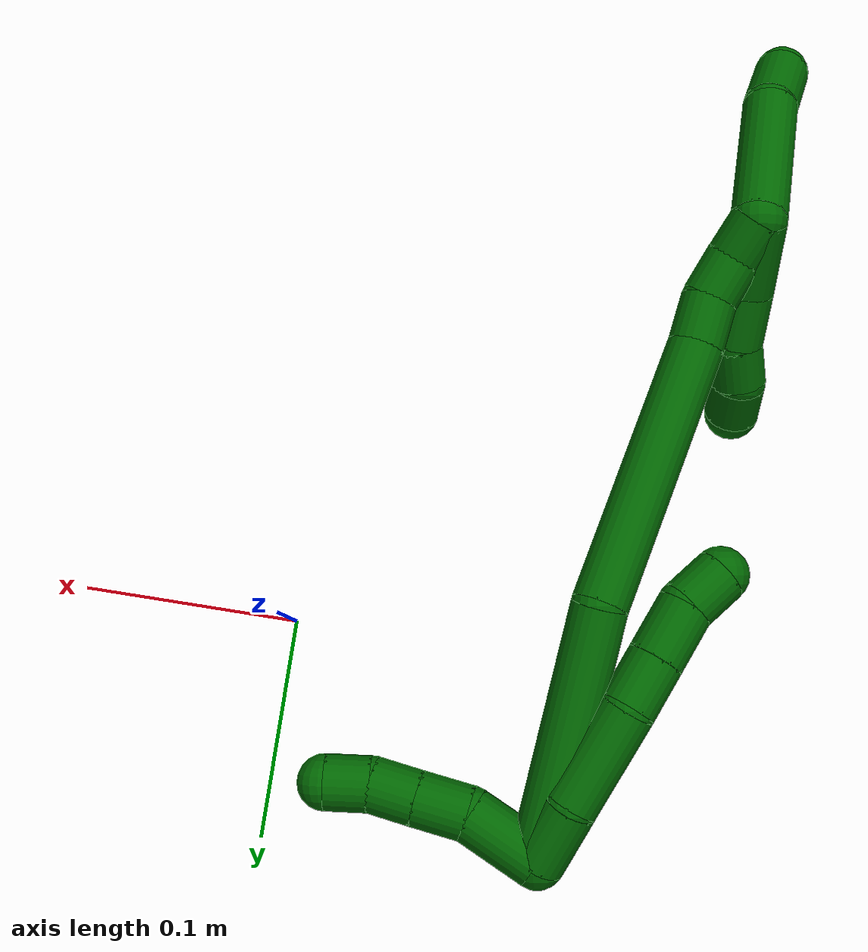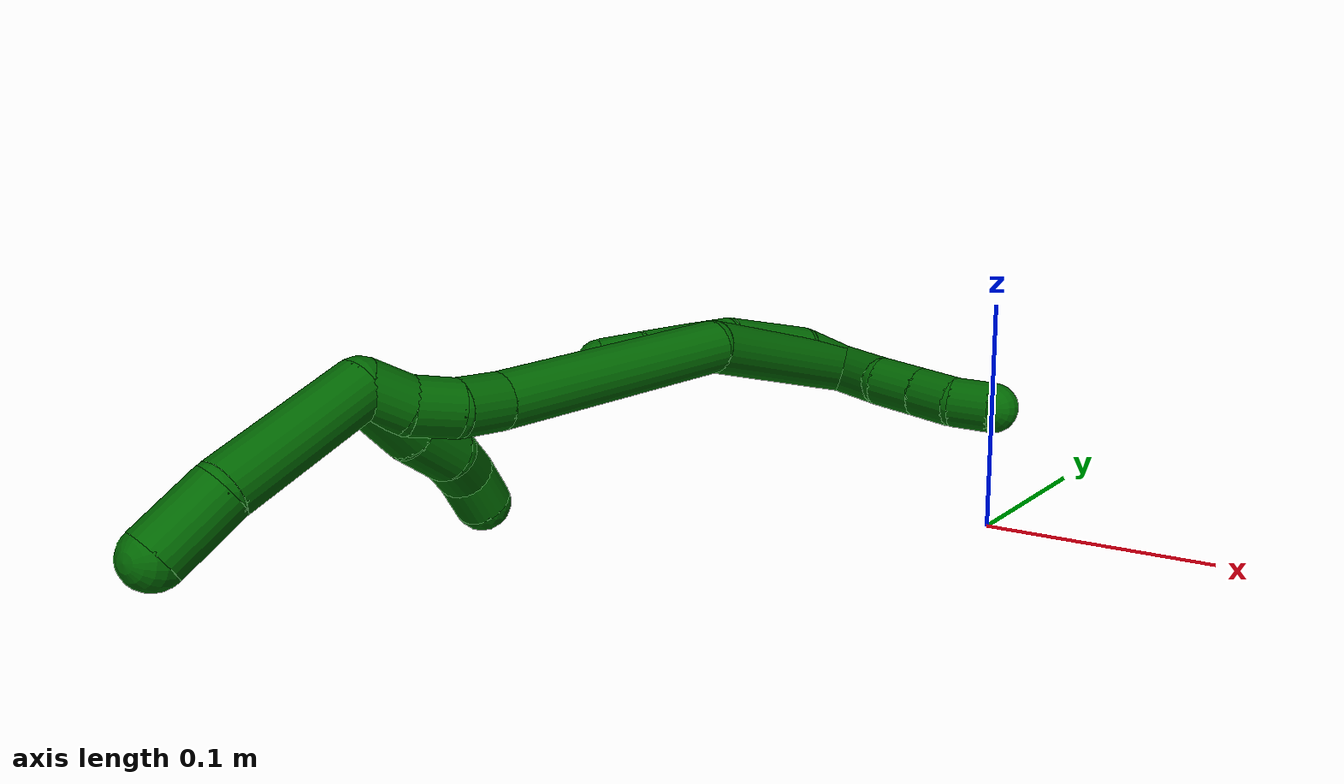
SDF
<sdf version="1.7">
 <world name="default">
  <model name="6">
   <static>0</static>
   <link name="6">
    <collision name="collision-cylinder-e_1_2_8">
     <pose>-0.008015 -0.00168 0.012885 0.129686 -0.552673 -0.036825</pose>
     <geometry><cylinder><radius>0.0125</radius><length>0.030534</length></cylinder></geometry>
     <surface>
      <friction><ode><mu>1.16</mu><mu2>1.16</mu2><slip1>0</slip1><slip2>0</slip2></ode></friction>
      <contact><ode><kp>1e+06</kp><kd>1</kd><max_vel>0</max_vel><min_depth>0.001</min_depth></ode></contact>
     </surface>
    </collision>
    <visual name="visual-cylinder-e_1_2_8">
     <pose>-0.008015 -0.00168 0.012885 0.129686 -0.552673 -0.036825</pose>
     <geometry><cylinder><radius>0.0125</radius><length>0.030534</length></cylinder></geometry>
     <material><ambient>0 0.392157 0.003922 1</ambient></material>
    </visual>
    <collision name="collision-cylinder-e_2_8_9">
     <pose>-0.025786 -0.010545 0.046368 0.335607 -0.420565 -0.07228</pose>
     <geometry><cylinder><radius>0.0125</radius><length>0.047795</length></cylinder></geometry>
     <surface>
      <friction><ode><mu>1.16</mu><mu2>1.16</mu2><slip1>0</slip1><slip2>0</slip2></ode></friction>
      <contact><ode><kp>1e+06</kp><kd>1</kd><max_vel>0</max_vel><min_depth>0.001</min_depth></ode></contact>
     </surface>
    </collision>
    <visual name="visual-cylinder-e_2_8_9">
     <pose>-0.025786 -0.010545 0.046368 0.335607 -0.420565 -0.07228</pose>
     <geometry><cylinder><radius>0.0125</radius><length>0.047795</length></cylinder></geometry>
     <material><ambient>0 0.392157 0.003922 1</ambient></material>
    </visual>
    <collision name="collision-cylinder-e_3_9_10">
     <pose>-0.038483 -0.023302 0.077093 0.503028 -0.249107 -0.06432</pose>
     <geometry><cylinder><radius>0.0125</radius><length>0.023855</length></cylinder></geometry>
     <surface>
      <friction><ode><mu>1.16</mu><mu2>1.16</mu2><slip1>0</slip1><slip2>0</slip2></ode></friction>
      <contact><ode><kp>1e+06</kp><kd>1</kd><max_vel>0</max_vel><min_depth>0.001</min_depth></ode></contact>
     </surface>
    </collision>
    <visual name="visual-cylinder-e_3_9_10">
     <pose>-0.038483 -0.023302 0.077093 0.503028 -0.249107 -0.06432</pose>
     <geometry><cylinder><radius>0.0125</radius><length>0.023855</length></cylinder></geometry>
     <material><ambient>0 0.392157 0.003922 1</ambient></material>
    </visual>
    <collision name="collision-cylinder-e_4_10_11">
     <pose>-0.044534 -0.03516 0.098418 0.511415 -0.237672 -0.062409</pose>
     <geometry><cylinder><radius>0.0125</radius><length>0.026426</length></cylinder></geometry>
     <surface>
      <friction><ode><mu>1.16</mu><mu2>1.16</mu2><slip1>0</slip1><slip2>0</slip2></ode></friction>
      <contact><ode><kp>1e+06</kp><kd>1</kd><max_vel>0</max_vel><min_depth>0.001</min_depth></ode></contact>
     </surface>
    </collision>
    <visual name="visual-cylinder-e_4_10_11">
     <pose>-0.044534 -0.03516 0.098418 0.511415 -0.237672 -0.062409</pose>
     <geometry><cylinder><radius>0.0125</radius><length>0.026426</length></cylinder></geometry>
     <material><ambient>0 0.392157 0.003922 1</ambient></material>
    </visual>
    <collision name="collision-cylinder-e_5_11_6">
     <pose>-0.051428 -0.04872 0.116484 0.814259 -0.361447 -0.157259</pose>
     <geometry><cylinder><radius>0.0125</radius><length>0.021391</length></cylinder></geometry>
     <surface>
      <friction><ode><mu>1.16</mu><mu2>1.16</mu2><slip1>0</slip1><slip2>0</slip2></ode></friction>
      <contact><ode><kp>1e+06</kp><kd>1</kd><max_vel>0</max_vel><min_depth>0.001</min_depth></ode></contact>
     </surface>
    </collision>
    <visual name="visual-cylinder-e_5_11_6">
     <pose>-0.051428 -0.04872 0.116484 0.814259 -0.361447 -0.157259</pose>
     <geometry><cylinder><radius>0.0125</radius><length>0.021391</length></cylinder></geometry>
     <material><ambient>0 0.392157 0.003922 1</ambient></material>
    </visual>
    <collision name="collision-cylinder-e_1_2_12">
     <pose>0.011122 0.009554 0.009494 -0.788543 0.690229 -0.296945</pose>
     <geometry><cylinder><radius>0.0125</radius><length>0.034935</length></cylinder></geometry>
     <surface>
      <friction><ode><mu>1.16</mu><mu2>1.16</mu2><slip1>0</slip1><slip2>0</slip2></ode></friction>
      <contact><ode><kp>1e+06</kp><kd>1</kd><max_vel>0</max_vel><min_depth>0.001</min_depth></ode></contact>
     </surface>
    </collision>
    <visual name="visual-cylinder-e_1_2_12">
     <pose>0.011122 0.009554 0.009494 -0.788543 0.690229 -0.296945</pose>
     <geometry><cylinder><radius>0.0125</radius><length>0.034935</length></cylinder></geometry>
     <material><ambient>0 0.392157 0.003922 1</ambient></material>
    </visual>
    <collision name="collision-cylinder-e_2_12_13">
     <pose>0.03112 0.026348 0.021962 -1.18108 0.848145 -0.587744</pose>
     <geometry><cylinder><radius>0.0125</radius><length>0.023669</length></cylinder></geometry>
     <surface>
      <friction><ode><mu>1.16</mu><mu2>1.16</mu2><slip1>0</slip1><slip2>0</slip2></ode></friction>
      <contact><ode><kp>1e+06</kp><kd>1</kd><max_vel>0</max_vel><min_depth>0.001</min_depth></ode></contact>
     </surface>
    </collision>
    <visual name="visual-cylinder-e_2_12_13">
     <pose>0.03112 0.026348 0.021962 -1.18108 0.848145 -0.587744</pose>
     <geometry><cylinder><radius>0.0125</radius><length>0.023669</length></cylinder></geometry>
     <material><ambient>0 0.392157 0.003922 1</ambient></material>
    </visual>
    <collision name="collision-cylinder-e_3_13_14">
     <pose>0.047865 0.040031 0.02773 -1.16152 0.84216 -0.57173</pose>
     <geometry><cylinder><radius>0.0125</radius><length>0.021095</length></cylinder></geometry>
     <surface>
      <friction><ode><mu>1.16</mu><mu2>1.16</mu2><slip1>0</slip1><slip2>0</slip2></ode></friction>
      <contact><ode><kp>1e+06</kp><kd>1</kd><max_vel>0</max_vel><min_depth>0.001</min_depth></ode></contact>
     </surface>
    </collision>
    <visual name="visual-cylinder-e_3_13_14">
     <pose>0.047865 0.040031 0.02773 -1.16152 0.84216 -0.57173</pose>
     <geometry><cylinder><radius>0.0125</radius><length>0.021095</length></cylinder></geometry>
     <material><ambient>0 0.392157 0.003922 1</ambient></material>
    </visual>
    <collision name="collision-cylinder-e_4_14_5">
     <pose>0.06296 0.053597 0.030854 -1.52467 0.792016 -0.759703</pose>
     <geometry><cylinder><radius>0.0125</radius><length>0.020302</length></cylinder></geometry>
     <surface>
      <friction><ode><mu>1.16</mu><mu2>1.16</mu2><slip1>0</slip1><slip2>0</slip2></ode></friction>
      <contact><ode><kp>1e+06</kp><kd>1</kd><max_vel>0</max_vel><min_depth>0.001</min_depth></ode></contact>
     </surface>
    </collision>
    <visual name="visual-cylinder-e_4_14_5">
     <pose>0.06296 0.053597 0.030854 -1.52467 0.792016 -0.759703</pose>
     <geometry><cylinder><radius>0.0125</radius><length>0.020302</length></cylinder></geometry>
     <material><ambient>0 0.392157 0.003922 1</ambient></material>
    </visual>
    <collision name="collision-cylinder-e_1_2_15">
     <pose>-0.014067 -0.004333 0.055267 0.078245 -0.248504 -0.009777</pose>
     <geometry><cylinder><radius>0.0125</radius><length>0.114387</length></cylinder></geometry>
     <surface>
      <friction><ode><mu>1.16</mu><mu2>1.16</mu2><slip1>0</slip1><slip2>0</slip2></ode></friction>
      <contact><ode><kp>1e+06</kp><kd>1</kd><max_vel>0</max_vel><min_depth>0.001</min_depth></ode></contact>
     </surface>
    </collision>
    <visual name="visual-cylinder-e_1_2_15">
     <pose>-0.014067 -0.004333 0.055267 0.078245 -0.248504 -0.009777</pose>
     <geometry><cylinder><radius>0.0125</radius><length>0.114387</length></cylinder></geometry>
     <material><ambient>0 0.392157 0.003922 1</ambient></material>
    </visual>
    <collision name="collision-cylinder-e_2_15_16">
     <pose>-0.035269 -0.031898 0.166773 0.391736 -0.116721 -0.023184</pose>
     <geometry><cylinder><radius>0.0125</radius><length>0.12253</length></cylinder></geometry>
     <surface>
      <friction><ode><mu>1.16</mu><mu2>1.16</mu2><slip1>0</slip1><slip2>0</slip2></ode></friction>
      <contact><ode><kp>1e+06</kp><kd>1</kd><max_vel>0</max_vel><min_depth>0.001</min_depth></ode></contact>
     </surface>
    </collision>
    <visual name="visual-cylinder-e_2_15_16">
     <pose>-0.035269 -0.031898 0.166773 0.391736 -0.116721 -0.023184</pose>
     <geometry><cylinder><radius>0.0125</radius><length>0.12253</length></cylinder></geometry>
     <material><ambient>0 0.392157 0.003922 1</ambient></material>
    </visual>
    <collision name="collision-cylinder-e_3_16_17">
     <pose>-0.043884 -0.058006 0.233551 0.266444 -0.134704 -0.018079</pose>
     <geometry><cylinder><radius>0.0125</radius><length>0.022049</length></cylinder></geometry>
     <surface>
      <friction><ode><mu>1.16</mu><mu2>1.16</mu2><slip1>0</slip1><slip2>0</slip2></ode></friction>
      <contact><ode><kp>1e+06</kp><kd>1</kd><max_vel>0</max_vel><min_depth>0.001</min_depth></ode></contact>
     </surface>
    </collision>
    <visual name="visual-cylinder-e_3_16_17">
     <pose>-0.043884 -0.058006 0.233551 0.266444 -0.134704 -0.018079</pose>
     <geometry><cylinder><radius>0.0125</radius><length>0.022049</length></cylinder></geometry>
     <material><ambient>0 0.392157 0.003922 1</ambient></material>
    </visual>
    <collision name="collision-cylinder-e_4_17_18">
     <pose>-0.049601 -0.064208 0.253084 0.354204 -0.415983 -0.075508</pose>
     <geometry><cylinder><radius>0.0125</radius><length>0.020968</length></cylinder></geometry>
     <surface>
      <friction><ode><mu>1.16</mu><mu2>1.16</mu2><slip1>0</slip1><slip2>0</slip2></ode></friction>
      <contact><ode><kp>1e+06</kp><kd>1</kd><max_vel>0</max_vel><min_depth>0.001</min_depth></ode></contact>
     </surface>
    </collision>
    <visual name="visual-cylinder-e_4_17_18">
     <pose>-0.049601 -0.064208 0.253084 0.354204 -0.415983 -0.075508</pose>
     <geometry><cylinder><radius>0.0125</radius><length>0.020968</length></cylinder></geometry>
     <material><ambient>0 0.392157 0.003922 1</ambient></material>
    </visual>
    <collision name="collision-cylinder-e_5_18_1">
     <pose>-0.059856 -0.068557 0.270041 0.127681 -0.643384 -0.042603</pose>
     <geometry><cylinder><radius>0.0125</radius><length>0.020066</length></cylinder></geometry>
     <surface>
      <friction><ode><mu>1.16</mu><mu2>1.16</mu2><slip1>0</slip1><slip2>0</slip2></ode></friction>
      <contact><ode><kp>1e+06</kp><kd>1</kd><max_vel>0</max_vel><min_depth>0.001</min_depth></ode></contact>
     </surface>
    </collision>
    <visual name="visual-cylinder-e_5_18_1">
     <pose>-0.059856 -0.068557 0.270041 0.127681 -0.643384 -0.042603</pose>
     <geometry><cylinder><radius>0.0125</radius><length>0.020066</length></cylinder></geometry>
     <material><ambient>0 0.392157 0.003922 1</ambient></material>
    </visual>
    <collision name="collision-cylinder-e_1_1_19">
     <pose>-0.05762 -0.085205 0.307097 0.492852 0.244948 0.061904</pose>
     <geometry><cylinder><radius>0.0125</radius><length>0.068083</length></cylinder></geometry>
     <surface>
      <friction><ode><mu>1.16</mu><mu2>1.16</mu2><slip1>0</slip1><slip2>0</slip2></ode></friction>
      <contact><ode><kp>1e+06</kp><kd>1</kd><max_vel>0</max_vel><min_depth>0.001</min_depth></ode></contact>
     </surface>
    </collision>
    <visual name="visual-cylinder-e_1_1_19">
     <pose>-0.05762 -0.085205 0.307097 0.492852 0.244948 0.061904</pose>
     <geometry><cylinder><radius>0.0125</radius><length>0.068083</length></cylinder></geometry>
     <material><ambient>0 0.392157 0.003922 1</ambient></material>
    </visual>
    <collision name="collision-cylinder-e_2_19_4">
     <pose>-0.044773 -0.111601 0.347036 0.782056 0.291841 0.121027</pose>
     <geometry><cylinder><radius>0.0125</radius><length>0.031917</length></cylinder></geometry>
     <surface>
      <friction><ode><mu>1.16</mu><mu2>1.16</mu2><slip1>0</slip1><slip2>0</slip2></ode></friction>
      <contact><ode><kp>1e+06</kp><kd>1</kd><max_vel>0</max_vel><min_depth>0.001</min_depth></ode></contact>
     </surface>
    </collision>
    <visual name="visual-cylinder-e_2_19_4">
     <pose>-0.044773 -0.111601 0.347036 0.782056 0.291841 0.121027</pose>
     <geometry><cylinder><radius>0.0125</radius><length>0.031917</length></cylinder></geometry>
     <material><ambient>0 0.392157 0.003922 1</ambient></material>
    </visual>
    <collision name="collision-cylinder-e_1_1_20">
     <pose>-0.057755 -0.075605 0.263858 2.73883 0.485947 1.76366</pose>
     <geometry><cylinder><radius>0.0125</radius><length>0.034774</length></cylinder></geometry>
     <surface>
      <friction><ode><mu>1.16</mu><mu2>1.16</mu2><slip1>0</slip1><slip2>0</slip2></ode></friction>
      <contact><ode><kp>1e+06</kp><kd>1</kd><max_vel>0</max_vel><min_depth>0.001</min_depth></ode></contact>
     </surface>
    </collision>
    <visual name="visual-cylinder-e_1_1_20">
     <pose>-0.057755 -0.075605 0.263858 2.73883 0.485947 1.76366</pose>
     <geometry><cylinder><radius>0.0125</radius><length>0.034774</length></cylinder></geometry>
     <material><ambient>0 0.392157 0.003922 1</ambient></material>
    </visual>
    <collision name="collision-cylinder-e_2_20_21">
     <pose>-0.044521 -0.084449 0.238569 2.89396 0.418478 2.08135</pose>
     <geometry><cylinder><radius>0.0125</radius><length>0.025163</length></cylinder></geometry>
     <surface>
      <friction><ode><mu>1.16</mu><mu2>1.16</mu2><slip1>0</slip1><slip2>0</slip2></ode></friction>
      <contact><ode><kp>1e+06</kp><kd>1</kd><max_vel>0</max_vel><min_depth>0.001</min_depth></ode></contact>
     </surface>
    </collision>
    <visual name="visual-cylinder-e_2_20_21">
     <pose>-0.044521 -0.084449 0.238569 2.89396 0.418478 2.08135</pose>
     <geometry><cylinder><radius>0.0125</radius><length>0.025163</length></cylinder></geometry>
     <material><ambient>0 0.392157 0.003922 1</ambient></material>
    </visual>
    <collision name="collision-cylinder-e_3_21_22">
     <pose>-0.036649 -0.092183 0.219155 2.60521 0.279365 0.945792</pose>
     <geometry><cylinder><radius>0.0125</radius><length>0.020016</length></cylinder></geometry>
     <surface>
      <friction><ode><mu>1.16</mu><mu2>1.16</mu2><slip1>0</slip1><slip2>0</slip2></ode></friction>
      <contact><ode><kp>1e+06</kp><kd>1</kd><max_vel>0</max_vel><min_depth>0.001</min_depth></ode></contact>
     </surface>
    </collision>
    <visual name="visual-cylinder-e_3_21_22">
     <pose>-0.036649 -0.092183 0.219155 2.60521 0.279365 0.945792</pose>
     <geometry><cylinder><radius>0.0125</radius><length>0.020016</length></cylinder></geometry>
     <material><ambient>0 0.392157 0.003922 1</ambient></material>
    </visual>
    <collision name="collision-cylinder-e_4_22_3">
     <pose>-0.028201 -0.101962 0.204218 2.51142 0.603404 1.52452</pose>
     <geometry><cylinder><radius>0.0125</radius><length>0.020047</length></cylinder></geometry>
     <surface>
      <friction><ode><mu>1.16</mu><mu2>1.16</mu2><slip1>0</slip1><slip2>0</slip2></ode></friction>
      <contact><ode><kp>1e+06</kp><kd>1</kd><max_vel>0</max_vel><min_depth>0.001</min_depth></ode></contact>
     </surface>
    </collision>
    <visual name="visual-cylinder-e_4_22_3">
     <pose>-0.028201 -0.101962 0.204218 2.51142 0.603404 1.52452</pose>
     <geometry><cylinder><radius>0.0125</radius><length>0.020047</length></cylinder></geometry>
     <material><ambient>0 0.392157 0.003922 1</ambient></material>
    </visual>
    <collision name="collision-sphere-3">
     <pose>-0.022514 -0.106826 0.19755 0 -0 0</pose>
     <geometry><sphere><radius>0.0125</radius></sphere></geometry>
     <surface>
      <friction><ode><mu>1.16</mu><mu2>1.16</mu2><slip1>0</slip1><slip2>0</slip2></ode></friction>
      <contact><ode><kp>1e+06</kp><kd>1</kd><max_vel>0</max_vel><min_depth>0.001</min_depth></ode></contact>
     </surface>
    </collision>
    <visual name="visual-sphere-3">
     <pose>-0.022514 -0.106826 0.19755 0 -0 0</pose>
     <geometry><sphere><radius>0.0125</radius></sphere></geometry>
     <material><ambient>0 0.392157 0.003922 1</ambient></material>
    </visual>
    <collision name="collision-sphere-22">
     <pose>-0.033889 -0.097099 0.210886 0 -0 0</pose>
     <geometry><sphere><radius>0.0125</radius></sphere></geometry>
     <surface>
      <friction><ode><mu>1.16</mu><mu2>1.16</mu2><slip1>0</slip1><slip2>0</slip2></ode></friction>
      <contact><ode><kp>1e+06</kp><kd>1</kd><max_vel>0</max_vel><min_depth>0.001</min_depth></ode></contact>
     </surface>
    </collision>
    <visual name="visual-sphere-22">
     <pose>-0.033889 -0.097099 0.210886 0 -0 0</pose>
     <geometry><sphere><radius>0.0125</radius></sphere></geometry>
     <material><ambient>0 0.392157 0.003922 1</ambient></material>
    </visual>
    <collision name="collision-sphere-21">
     <pose>-0.039408 -0.087267 0.227424 0 -0 0</pose>
     <geometry><sphere><radius>0.0125</radius></sphere></geometry>
     <surface>
      <friction><ode><mu>1.16</mu><mu2>1.16</mu2><slip1>0</slip1><slip2>0</slip2></ode></friction>
      <contact><ode><kp>1e+06</kp><kd>1</kd><max_vel>0</max_vel><min_depth>0.001</min_depth></ode></contact>
     </surface>
    </collision>
    <visual name="visual-sphere-21">
     <pose>-0.039408 -0.087267 0.227424 0 -0 0</pose>
     <geometry><sphere><radius>0.0125</radius></sphere></geometry>
     <material><ambient>0 0.392157 0.003922 1</ambient></material>
    </visual>
    <collision name="collision-sphere-20">
     <pose>-0.049634 -0.081631 0.249714 0 -0 0</pose>
     <geometry><sphere><radius>0.0125</radius></sphere></geometry>
     <surface>
      <friction><ode><mu>1.16</mu><mu2>1.16</mu2><slip1>0</slip1><slip2>0</slip2></ode></friction>
      <contact><ode><kp>1e+06</kp><kd>1</kd><max_vel>0</max_vel><min_depth>0.001</min_depth></ode></contact>
     </surface>
    </collision>
    <visual name="visual-sphere-20">
     <pose>-0.049634 -0.081631 0.249714 0 -0 0</pose>
     <geometry><sphere><radius>0.0125</radius></sphere></geometry>
     <material><ambient>0 0.392157 0.003922 1</ambient></material>
    </visual>
    <collision name="collision-sphere-4">
     <pose>-0.040182 -0.122372 0.357879 0 -0 0</pose>
     <geometry><sphere><radius>0.0125</radius></sphere></geometry>
     <surface>
      <friction><ode><mu>1.16</mu><mu2>1.16</mu2><slip1>0</slip1><slip2>0</slip2></ode></friction>
      <contact><ode><kp>1e+06</kp><kd>1</kd><max_vel>0</max_vel><min_depth>0.001</min_depth></ode></contact>
     </surface>
    </collision>
    <visual name="visual-sphere-4">
     <pose>-0.040182 -0.122372 0.357879 0 -0 0</pose>
     <geometry><sphere><radius>0.0125</radius></sphere></geometry>
     <material><ambient>0 0.392157 0.003922 1</ambient></material>
    </visual>
    <collision name="collision-sphere-6">
     <pose>-0.05521 -0.055995 0.123351 0 -0 0</pose>
     <geometry><sphere><radius>0.0125</radius></sphere></geometry>
     <surface>
      <friction><ode><mu>1.16</mu><mu2>1.16</mu2><slip1>0</slip1><slip2>0</slip2></ode></friction>
      <contact><ode><kp>1e+06</kp><kd>1</kd><max_vel>0</max_vel><min_depth>0.001</min_depth></ode></contact>
     </surface>
    </collision>
    <visual name="visual-sphere-6">
     <pose>-0.05521 -0.055995 0.123351 0 -0 0</pose>
     <geometry><sphere><radius>0.0125</radius></sphere></geometry>
     <material><ambient>0 0.392157 0.003922 1</ambient></material>
    </visual>
    <collision name="collision-sphere-11">
     <pose>-0.047645 -0.041444 0.109617 0 -0 0</pose>
     <geometry><sphere><radius>0.0125</radius></sphere></geometry>
     <surface>
      <friction><ode><mu>1.16</mu><mu2>1.16</mu2><slip1>0</slip1><slip2>0</slip2></ode></friction>
      <contact><ode><kp>1e+06</kp><kd>1</kd><max_vel>0</max_vel><min_depth>0.001</min_depth></ode></contact>
     </surface>
    </collision>
    <visual name="visual-sphere-11">
     <pose>-0.047645 -0.041444 0.109617 0 -0 0</pose>
     <geometry><sphere><radius>0.0125</radius></sphere></geometry>
     <material><ambient>0 0.392157 0.003922 1</ambient></material>
    </visual>
    <collision name="collision-sphere-10">
     <pose>-0.041424 -0.028875 0.08722 0 -0 0</pose>
     <geometry><sphere><radius>0.0125</radius></sphere></geometry>
     <surface>
      <friction><ode><mu>1.16</mu><mu2>1.16</mu2><slip1>0</slip1><slip2>0</slip2></ode></friction>
      <contact><ode><kp>1e+06</kp><kd>1</kd><max_vel>0</max_vel><min_depth>0.001</min_depth></ode></contact>
     </surface>
    </collision>
    <visual name="visual-sphere-10">
     <pose>-0.041424 -0.028875 0.08722 0 -0 0</pose>
     <geometry><sphere><radius>0.0125</radius></sphere></geometry>
     <material><ambient>0 0.392157 0.003922 1</ambient></material>
    </visual>
    <collision name="collision-sphere-9">
     <pose>-0.035542 -0.01773 0.066965 0 -0 0</pose>
     <geometry><sphere><radius>0.0125</radius></sphere></geometry>
     <surface>
      <friction><ode><mu>1.16</mu><mu2>1.16</mu2><slip1>0</slip1><slip2>0</slip2></ode></friction>
      <contact><ode><kp>1e+06</kp><kd>1</kd><max_vel>0</max_vel><min_depth>0.001</min_depth></ode></contact>
     </surface>
    </collision>
    <visual name="visual-sphere-9">
     <pose>-0.035542 -0.01773 0.066965 0 -0 0</pose>
     <geometry><sphere><radius>0.0125</radius></sphere></geometry>
     <material><ambient>0 0.392157 0.003922 1</ambient></material>
    </visual>
    <collision name="collision-sphere-2">
     <geometry><sphere><radius>0.0125</radius></sphere></geometry>
     <surface>
      <friction><ode><mu>1.16</mu><mu2>1.16</mu2><slip1>0</slip1><slip2>0</slip2></ode></friction>
      <contact><ode><kp>1e+06</kp><kd>1</kd><max_vel>0</max_vel><min_depth>0.001</min_depth></ode></contact>
     </surface>
    </collision>
    <visual name="visual-sphere-2">
     <geometry><sphere><radius>0.0125</radius></sphere></geometry>
     <material><ambient>0 0.392157 0.003922 1</ambient></material>
    </visual>
    <collision name="collision-sphere-19">
     <pose>-0.049365 -0.10083 0.336192 0 -0 0</pose>
     <geometry><sphere><radius>0.0125</radius></sphere></geometry>
     <surface>
      <friction><ode><mu>1.16</mu><mu2>1.16</mu2><slip1>0</slip1><slip2>0</slip2></ode></friction>
      <contact><ode><kp>1e+06</kp><kd>1</kd><max_vel>0</max_vel><min_depth>0.001</min_depth></ode></contact>
     </surface>
    </collision>
    <visual name="visual-sphere-19">
     <pose>-0.049365 -0.10083 0.336192 0 -0 0</pose>
     <geometry><sphere><radius>0.0125</radius></sphere></geometry>
     <material><ambient>0 0.392157 0.003922 1</ambient></material>
    </visual>
    <collision name="collision-sphere-8">
     <pose>-0.016029 -0.003361 0.02577 0 -0 0</pose>
     <geometry><sphere><radius>0.0125</radius></sphere></geometry>
     <surface>
      <friction><ode><mu>1.16</mu><mu2>1.16</mu2><slip1>0</slip1><slip2>0</slip2></ode></friction>
      <contact><ode><kp>1e+06</kp><kd>1</kd><max_vel>0</max_vel><min_depth>0.001</min_depth></ode></contact>
     </surface>
    </collision>
    <visual name="visual-sphere-8">
     <pose>-0.016029 -0.003361 0.02577 0 -0 0</pose>
     <geometry><sphere><radius>0.0125</radius></sphere></geometry>
     <material><ambient>0 0.392157 0.003922 1</ambient></material>
    </visual>
    <collision name="collision-sphere-12">
     <pose>0.022243 0.019108 0.018988 0 -0 0</pose>
     <geometry><sphere><radius>0.0125</radius></sphere></geometry>
     <surface>
      <friction><ode><mu>1.16</mu><mu2>1.16</mu2><slip1>0</slip1><slip2>0</slip2></ode></friction>
      <contact><ode><kp>1e+06</kp><kd>1</kd><max_vel>0</max_vel><min_depth>0.001</min_depth></ode></contact>
     </surface>
    </collision>
    <visual name="visual-sphere-12">
     <pose>0.022243 0.019108 0.018988 0 -0 0</pose>
     <geometry><sphere><radius>0.0125</radius></sphere></geometry>
     <material><ambient>0 0.392157 0.003922 1</ambient></material>
    </visual>
    <collision name="collision-sphere-13">
     <pose>0.039996 0.033588 0.024935 0 -0 0</pose>
     <geometry><sphere><radius>0.0125</radius></sphere></geometry>
     <surface>
      <friction><ode><mu>1.16</mu><mu2>1.16</mu2><slip1>0</slip1><slip2>0</slip2></ode></friction>
      <contact><ode><kp>1e+06</kp><kd>1</kd><max_vel>0</max_vel><min_depth>0.001</min_depth></ode></contact>
     </surface>
    </collision>
    <visual name="visual-sphere-13">
     <pose>0.039996 0.033588 0.024935 0 -0 0</pose>
     <geometry><sphere><radius>0.0125</radius></sphere></geometry>
     <material><ambient>0 0.392157 0.003922 1</ambient></material>
    </visual>
    <collision name="collision-sphere-14">
     <pose>0.055735 0.046474 0.030525 0 -0 0</pose>
     <geometry><sphere><radius>0.0125</radius></sphere></geometry>
     <surface>
      <friction><ode><mu>1.16</mu><mu2>1.16</mu2><slip1>0</slip1><slip2>0</slip2></ode></friction>
      <contact><ode><kp>1e+06</kp><kd>1</kd><max_vel>0</max_vel><min_depth>0.001</min_depth></ode></contact>
     </surface>
    </collision>
    <visual name="visual-sphere-14">
     <pose>0.055735 0.046474 0.030525 0 -0 0</pose>
     <geometry><sphere><radius>0.0125</radius></sphere></geometry>
     <material><ambient>0 0.392157 0.003922 1</ambient></material>
    </visual>
    <collision name="collision-sphere-5">
     <pose>0.070185 0.060719 0.031183 0 -0 0</pose>
     <geometry><sphere><radius>0.0125</radius></sphere></geometry>
     <surface>
      <friction><ode><mu>1.16</mu><mu2>1.16</mu2><slip1>0</slip1><slip2>0</slip2></ode></friction>
      <contact><ode><kp>1e+06</kp><kd>1</kd><max_vel>0</max_vel><min_depth>0.001</min_depth></ode></contact>
     </surface>
    </collision>
    <visual name="visual-sphere-5">
     <pose>0.070185 0.060719 0.031183 0 -0 0</pose>
     <geometry><sphere><radius>0.0125</radius></sphere></geometry>
     <material><ambient>0 0.392157 0.003922 1</ambient></material>
    </visual>
    <collision name="collision-sphere-15">
     <pose>-0.028134 -0.008666 0.110534 0 -0 0</pose>
     <geometry><sphere><radius>0.0125</radius></sphere></geometry>
     <surface>
      <friction><ode><mu>1.16</mu><mu2>1.16</mu2><slip1>0</slip1><slip2>0</slip2></ode></friction>
      <contact><ode><kp>1e+06</kp><kd>1</kd><max_vel>0</max_vel><min_depth>0.001</min_depth></ode></contact>
     </surface>
    </collision>
    <visual name="visual-sphere-15">
     <pose>-0.028134 -0.008666 0.110534 0 -0 0</pose>
     <geometry><sphere><radius>0.0125</radius></sphere></geometry>
     <material><ambient>0 0.392157 0.003922 1</ambient></material>
    </visual>
    <collision name="collision-sphere-16">
     <pose>-0.042403 -0.055129 0.223011 0 -0 0</pose>
     <geometry><sphere><radius>0.0125</radius></sphere></geometry>
     <surface>
      <friction><ode><mu>1.16</mu><mu2>1.16</mu2><slip1>0</slip1><slip2>0</slip2></ode></friction>
      <contact><ode><kp>1e+06</kp><kd>1</kd><max_vel>0</max_vel><min_depth>0.001</min_depth></ode></contact>
     </surface>
    </collision>
    <visual name="visual-sphere-16">
     <pose>-0.042403 -0.055129 0.223011 0 -0 0</pose>
     <geometry><sphere><radius>0.0125</radius></sphere></geometry>
     <material><ambient>0 0.392157 0.003922 1</ambient></material>
    </visual>
    <collision name="collision-sphere-17">
     <pose>-0.045364 -0.060882 0.24409 0 -0 0</pose>
     <geometry><sphere><radius>0.0125</radius></sphere></geometry>
     <surface>
      <friction><ode><mu>1.16</mu><mu2>1.16</mu2><slip1>0</slip1><slip2>0</slip2></ode></friction>
      <contact><ode><kp>1e+06</kp><kd>1</kd><max_vel>0</max_vel><min_depth>0.001</min_depth></ode></contact>
     </surface>
    </collision>
    <visual name="visual-sphere-17">
     <pose>-0.045364 -0.060882 0.24409 0 -0 0</pose>
     <geometry><sphere><radius>0.0125</radius></sphere></geometry>
     <material><ambient>0 0.392157 0.003922 1</ambient></material>
    </visual>
    <collision name="collision-sphere-18">
     <pose>-0.053837 -0.067535 0.262079 0 -0 0</pose>
     <geometry><sphere><radius>0.0125</radius></sphere></geometry>
     <surface>
      <friction><ode><mu>1.16</mu><mu2>1.16</mu2><slip1>0</slip1><slip2>0</slip2></ode></friction>
      <contact><ode><kp>1e+06</kp><kd>1</kd><max_vel>0</max_vel><min_depth>0.001</min_depth></ode></contact>
     </surface>
    </collision>
    <visual name="visual-sphere-18">
     <pose>-0.053837 -0.067535 0.262079 0 -0 0</pose>
     <geometry><sphere><radius>0.0125</radius></sphere></geometry>
     <material><ambient>0 0.392157 0.003922 1</ambient></material>
    </visual>
    <collision name="collision-sphere-1">
     <pose>-0.065875 -0.069579 0.278002 0 -0 0</pose>
     <geometry><sphere><radius>0.0125</radius></sphere></geometry>
     <surface>
      <friction><ode><mu>1.16</mu><mu2>1.16</mu2><slip1>0</slip1><slip2>0</slip2></ode></friction>
      <contact><ode><kp>1e+06</kp><kd>1</kd><max_vel>0</max_vel><min_depth>0.001</min_depth></ode></contact>
     </surface>
    </collision>
    <visual name="visual-sphere-1">
     <pose>-0.065875 -0.069579 0.278002 0 -0 0</pose>
     <geometry><sphere><radius>0.0125</radius></sphere></geometry>
     <material><ambient>0 0.392157 0.003922 1</ambient></material>
    </visual>
    <inertial>
     <pose>-0.026904 -0.035472 0.146505 0 -0 0</pose>
     <mass>0.75</mass>
     <inertia>
      <ixx>0.000345</ixx>
      <ixy>0</ixy>
      <ixz>0</ixz>
      <iyy>0.000327</iyy>
      <iyz>0</iyz>
      <izz>0.000166</izz>
     </inertia>
    </inertial>
   </link>
   <pose>-0.123045 0.086271 0.047281 1.42146 0.828232 0.038918</pose>
  </model>
 </world>
</sdf>
